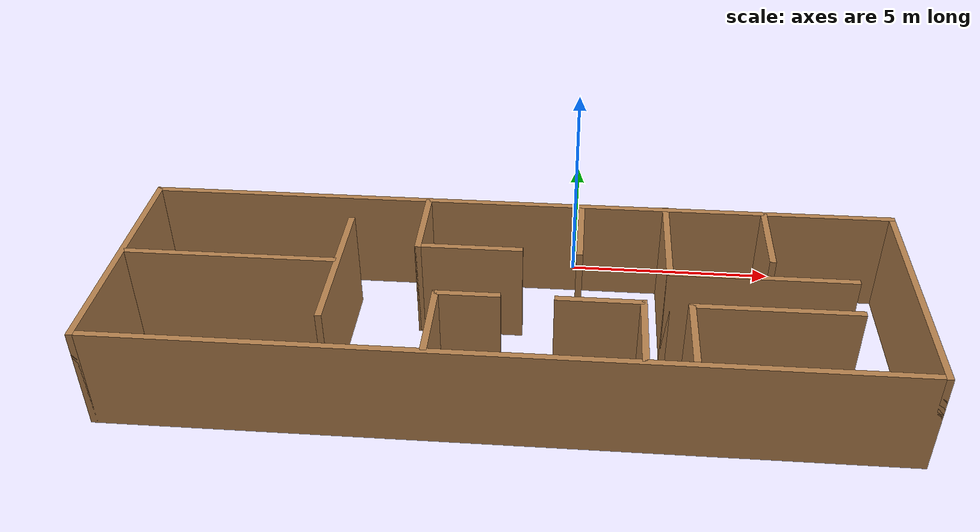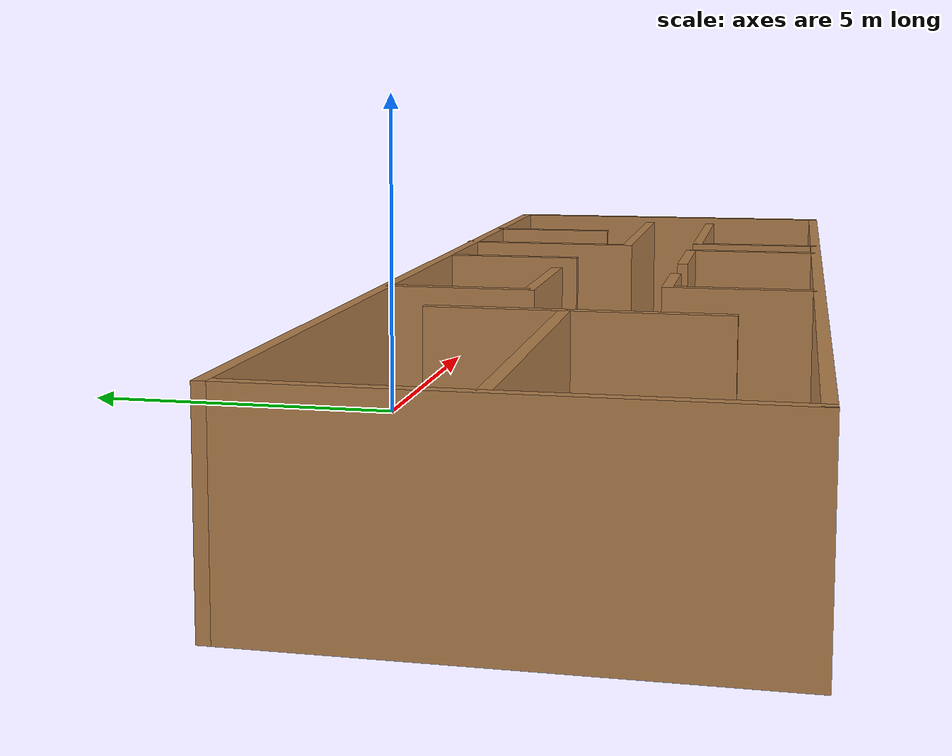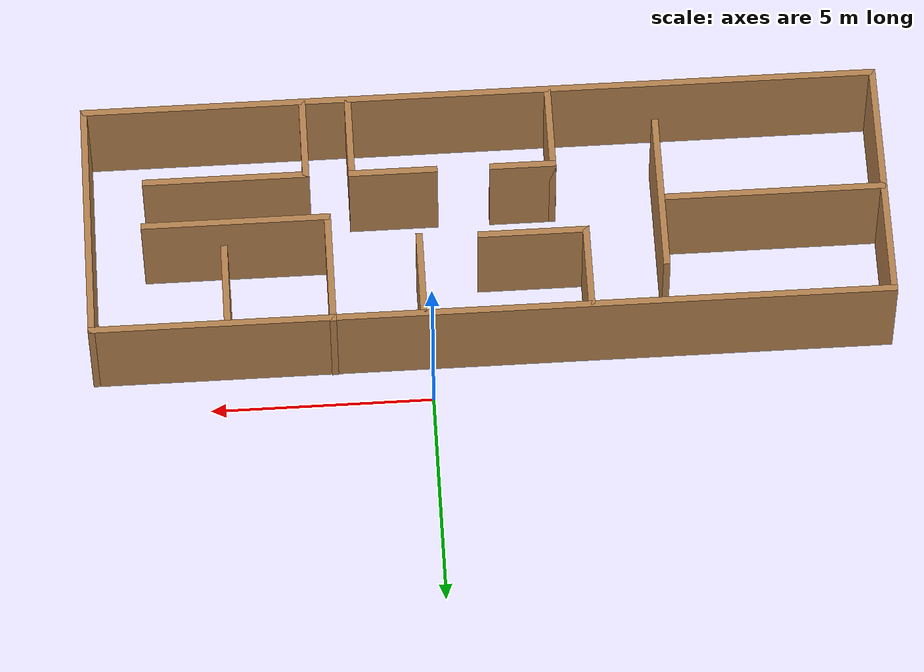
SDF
<?xml version='1.0'?>
<sdf version='1.7'>
  <model name='v1'>
    <pose>-1.395 -3.2725 0 0 -0 0</pose>
    <link name='Wall_0'>
      <collision name='Wall_0_Collision'>
        <geometry>
          <box>
            <size>5.75 0.15 2.5</size>
          </box>
        </geometry>
        <pose>0 0 1.25 0 -0 0</pose>
      </collision>
      <visual name='Wall_0_Visual'>
        <pose>0 0 1.25 0 -0 0</pose>
        <geometry>
          <box>
            <size>5.75 0.15 2.5</size>
          </box>
        </geometry>
        <material>
          <script>
            <uri>file://media/materials/scripts/gazebo.material</uri>
            <name>Gazebo/Wood</name>
          </script>
          <ambient>1 1 1 1</ambient>
        </material>
        <meta>
          <layer>0</layer>
        </meta>
      </visual>
      <pose>-8.925 -0.3975 0 0 -0 -1.5708</pose>
    </link>
    <link name='Wall_1'>
      <collision name='Wall_1_Collision'>
        <geometry>
          <box>
            <size>18 0.15 2.5</size>
          </box>
        </geometry>
        <pose>0 0 1.25 0 -0 0</pose>
      </collision>
      <visual name='Wall_1_Visual'>
        <pose>0 0 1.25 0 -0 0</pose>
        <geometry>
          <box>
            <size>18 0.15 2.5</size>
          </box>
        </geometry>
        <material>
          <script>
            <uri>file://media/materials/scripts/gazebo.material</uri>
            <name>Gazebo/Wood</name>
          </script>
          <ambient>1 1 1 1</ambient>
        </material>
        <meta>
          <layer>0</layer>
        </meta>
      </visual>
      <pose>0 -3.1975 0 0 -0 0</pose>
    </link>
    <link name='Wall_10'>
      <collision name='Wall_10_Collision'>
        <geometry>
          <box>
            <size>4.25 0.15 2.5</size>
          </box>
        </geometry>
        <pose>0 0 1.25 0 -0 0</pose>
      </collision>
      <visual name='Wall_10_Visual'>
        <pose>0 0 1.25 0 -0 0</pose>
        <geometry>
          <box>
            <size>4.25 0.15 2.5</size>
          </box>
        </geometry>
        <material>
          <script>
            <uri>file://media/materials/scripts/gazebo.material</uri>
            <name>Gazebo/Wood</name>
          </script>
          <ambient>1 1 1 1</ambient>
        </material>
        <meta>
          <layer>0</layer>
        </meta>
      </visual>
      <pose>5.615 -0.1775 0 0 -0 0</pose>
    </link>
    <link name='Wall_12'>
      <collision name='Wall_12_Collision'>
        <geometry>
          <box>
            <size>2 0.15 2.5</size>
          </box>
        </geometry>
        <pose>0 0 1.25 0 -0 0</pose>
      </collision>
      <visual name='Wall_12_Visual'>
        <pose>0 0 1.25 0 -0 0</pose>
        <geometry>
          <box>
            <size>2 0.15 2.5</size>
          </box>
        </geometry>
        <material>
          <script>
            <uri>file://media/materials/scripts/gazebo.material</uri>
            <name>Gazebo/Wood</name>
          </script>
          <ambient>1 1 1 1</ambient>
        </material>
        <meta>
          <layer>0</layer>
        </meta>
      </visual>
      <pose>5.905 1.4275 0 0 -0 -1.5708</pose>
    </link>
    <link name='Wall_14'>
      <collision name='Wall_14_Collision'>
        <geometry>
          <box>
            <size>2 0.15 2.5</size>
          </box>
        </geometry>
        <pose>0 0 1.25 0 -0 0</pose>
      </collision>
      <visual name='Wall_14_Visual'>
        <pose>0 0 1.25 0 -0 0</pose>
        <geometry>
          <box>
            <size>2 0.15 2.5</size>
          </box>
        </geometry>
        <material>
          <script>
            <uri>file://media/materials/scripts/gazebo.material</uri>
            <name>Gazebo/Wood</name>
          </script>
          <ambient>1 1 1 1</ambient>
        </material>
        <meta>
          <layer>0</layer>
        </meta>
      </visual>
      <pose>3.995 -2.2225 0 0 -0 1.5708</pose>
    </link>
    <link name='Wall_15'>
      <collision name='Wall_15_Collision'>
        <geometry>
          <box>
            <size>3.75 0.15 2.5</size>
          </box>
        </geometry>
        <pose>0 0 1.25 0 -0 0</pose>
      </collision>
      <visual name='Wall_15_Visual'>
        <pose>0 0 1.25 0 -0 0</pose>
        <geometry>
          <box>
            <size>3.75 0.15 2.5</size>
          </box>
        </geometry>
        <material>
          <script>
            <uri>file://media/materials/scripts/gazebo.material</uri>
            <name>Gazebo/Wood</name>
          </script>
          <ambient>1 1 1 1</ambient>
        </material>
        <meta>
          <layer>0</layer>
        </meta>
      </visual>
      <pose>5.795 -1.2975 0 0 -0 0</pose>
    </link>
    <link name='Wall_17'>
      <collision name='Wall_17_Collision'>
        <geometry>
          <box>
            <size>2 0.15 2.5</size>
          </box>
        </geometry>
        <pose>0 0 1.25 0 -0 0</pose>
      </collision>
      <visual name='Wall_17_Visual'>
        <pose>0 0 1.25 0 -0 0</pose>
        <geometry>
          <box>
            <size>2 0.15 2.5</size>
          </box>
        </geometry>
        <material>
          <script>
            <uri>file://media/materials/scripts/gazebo.material</uri>
            <name>Gazebo/Wood</name>
          </script>
          <ambient>1 1 1 1</ambient>
        </material>
        <meta>
          <layer>0</layer>
        </meta>
      </visual>
      <pose>-1.555 -2.1725 0 0 -0 1.5708</pose>
    </link>
    <link name='Wall_18'>
      <collision name='Wall_18_Collision'>
        <geometry>
          <box>
            <size>1.5 0.15 2.5</size>
          </box>
        </geometry>
        <pose>0 0 1.25 0 -0 0</pose>
      </collision>
      <visual name='Wall_18_Visual'>
        <pose>0 0 1.25 0 -0 0</pose>
        <geometry>
          <box>
            <size>1.5 0.15 2.5</size>
          </box>
        </geometry>
        <material>
          <script>
            <uri>file://media/materials/scripts/gazebo.material</uri>
            <name>Gazebo/Wood</name>
          </script>
          <ambient>1 1 1 1</ambient>
        </material>
        <meta>
          <layer>0</layer>
        </meta>
      </visual>
      <pose>-0.88 -1.2475 0 0 -0 0</pose>
    </link>
    <link name='Wall_2'>
      <collision name='Wall_2_Collision'>
        <geometry>
          <box>
            <size>5.75 0.15 2.5</size>
          </box>
        </geometry>
        <pose>0 0 1.25 0 -0 0</pose>
      </collision>
      <visual name='Wall_2_Visual'>
        <pose>0 0 1.25 0 -0 0</pose>
        <geometry>
          <box>
            <size>5.75 0.15 2.5</size>
          </box>
        </geometry>
        <material>
          <script>
            <uri>file://media/materials/scripts/gazebo.material</uri>
            <name>Gazebo/Wood</name>
          </script>
          <ambient>1 1 1 1</ambient>
        </material>
        <meta>
          <layer>0</layer>
        </meta>
      </visual>
      <pose>8.925 -0.3975 0 0 -0 1.5708</pose>
    </link>
    <link name='Wall_20'>
      <collision name='Wall_20_Collision'>
        <geometry>
          <box>
            <size>2 0.15 2.5</size>
          </box>
        </geometry>
        <pose>0 0 1.25 0 -0 0</pose>
      </collision>
      <visual name='Wall_20_Visual'>
        <pose>0 0 1.25 0 -0 0</pose>
        <geometry>
          <box>
            <size>2 0.15 2.5</size>
          </box>
        </geometry>
        <material>
          <script>
            <uri>file://media/materials/scripts/gazebo.material</uri>
            <name>Gazebo/Wood</name>
          </script>
          <ambient>1 1 1 1</ambient>
        </material>
        <meta>
          <layer>0</layer>
        </meta>
      </visual>
      <pose>2.04 -1.2575 0 0 -0 0</pose>
    </link>
    <link name='Wall_21'>
      <collision name='Wall_21_Collision'>
        <geometry>
          <box>
            <size>2 0.15 2.5</size>
          </box>
        </geometry>
        <pose>0 0 1.25 0 -0 0</pose>
      </collision>
      <visual name='Wall_21_Visual'>
        <pose>0 0 1.25 0 -0 0</pose>
        <geometry>
          <box>
            <size>2 0.15 2.5</size>
          </box>
        </geometry>
        <material>
          <script>
            <uri>file://media/materials/scripts/gazebo.material</uri>
            <name>Gazebo/Wood</name>
          </script>
          <ambient>1 1 1 1</ambient>
        </material>
        <meta>
          <layer>0</layer>
        </meta>
      </visual>
      <pose>2.965 -2.1825 0 0 -0 -1.5708</pose>
    </link>
    <link name='Wall_23'>
      <collision name='Wall_23_Collision'>
        <geometry>
          <box>
            <size>2 0.15 2.5</size>
          </box>
        </geometry>
        <pose>0 0 1.25 0 -0 0</pose>
      </collision>
      <visual name='Wall_23_Visual'>
        <pose>0 0 1.25 0 -0 0</pose>
        <geometry>
          <box>
            <size>2 0.15 2.5</size>
          </box>
        </geometry>
        <material>
          <script>
            <uri>file://media/materials/scripts/gazebo.material</uri>
            <name>Gazebo/Wood</name>
          </script>
          <ambient>1 1 1 1</ambient>
        </material>
        <meta>
          <layer>0</layer>
        </meta>
      </visual>
      <pose>1.545 1.3775 0 0 -0 -1.5708</pose>
    </link>
    <link name='Wall_25'>
      <collision name='Wall_25_Collision'>
        <geometry>
          <box>
            <size>2 0.15 2.5</size>
          </box>
        </geometry>
        <pose>0 0 1.25 0 -0 0</pose>
      </collision>
      <visual name='Wall_25_Visual'>
        <pose>0 0 1.25 0 -0 0</pose>
        <geometry>
          <box>
            <size>2 0.15 2.5</size>
          </box>
        </geometry>
        <material>
          <script>
            <uri>file://media/materials/scripts/gazebo.material</uri>
            <name>Gazebo/Wood</name>
          </script>
          <ambient>1 1 1 1</ambient>
        </material>
        <meta>
          <layer>0</layer>
        </meta>
      </visual>
      <pose>-2.185 1.4175 0 0 -0 -1.5708</pose>
    </link>
    <link name='Wall_26'>
      <collision name='Wall_26_Collision'>
        <geometry>
          <box>
            <size>2.5 0.15 2.5</size>
          </box>
        </geometry>
        <pose>0 0 1.25 0 -0 0</pose>
      </collision>
      <visual name='Wall_26_Visual'>
        <pose>0 0 1.25 0 -0 0</pose>
        <geometry>
          <box>
            <size>2.5 0.15 2.5</size>
          </box>
        </geometry>
        <material>
          <script>
            <uri>file://media/materials/scripts/gazebo.material</uri>
            <name>Gazebo/Wood</name>
          </script>
          <ambient>1 1 1 1</ambient>
        </material>
        <meta>
          <layer>0</layer>
        </meta>
      </visual>
      <pose>-1.01 0.4925 0 0 -0 0</pose>
    </link>
    <link name='Wall_3'>
      <collision name='Wall_3_Collision'>
        <geometry>
          <box>
            <size>18 0.15 2.5</size>
          </box>
        </geometry>
        <pose>0 0 1.25 0 -0 0</pose>
      </collision>
      <visual name='Wall_3_Visual'>
        <pose>0 0 1.25 0 -0 0</pose>
        <geometry>
          <box>
            <size>18 0.15 2.5</size>
          </box>
        </geometry>
        <material>
          <script>
            <uri>file://media/materials/scripts/gazebo.material</uri>
            <name>Gazebo/Wood</name>
          </script>
          <ambient>1 1 1 1</ambient>
        </material>
        <meta>
          <layer>0</layer>
        </meta>
      </visual>
      <pose>0 2.4025 0 0 -0 3.14159</pose>
    </link>
    <link name='Wall_5'>
      <collision name='Wall_5_Collision'>
        <geometry>
          <box>
            <size>5 0.15 2.5</size>
          </box>
        </geometry>
        <pose>0 0 1.25 0 -0 0</pose>
      </collision>
      <visual name='Wall_5_Visual'>
        <pose>0 0 1.25 0 -0 0</pose>
        <geometry>
          <box>
            <size>5 0.15 2.5</size>
          </box>
        </geometry>
        <material>
          <script>
            <uri>file://media/materials/scripts/gazebo.material</uri>
            <name>Gazebo/Wood</name>
          </script>
          <ambient>1 1 1 1</ambient>
        </material>
        <meta>
          <layer>0</layer>
        </meta>
      </visual>
      <pose>-6.46 -0.2275 0 0 -0 0</pose>
    </link>
    <link name='Wall_7'>
      <collision name='Wall_7_Collision'>
        <geometry>
          <box>
            <size>3.75 0.15 2.5</size>
          </box>
        </geometry>
        <pose>0 0 1.25 0 -0 0</pose>
      </collision>
      <visual name='Wall_7_Visual'>
        <pose>0 0 1.25 0 -0 0</pose>
        <geometry>
          <box>
            <size>3.75 0.15 2.5</size>
          </box>
        </geometry>
        <material>
          <script>
            <uri>file://media/materials/scripts/gazebo.material</uri>
            <name>Gazebo/Wood</name>
          </script>
          <ambient>1 1 1 1</ambient>
        </material>
        <meta>
          <layer>0</layer>
        </meta>
      </visual>
      <pose>-3.925 -0.3775 0 0 -0 -1.5708</pose>
    </link>
    <link name='Wall_9'>
      <collision name='Wall_9_Collision'>
        <geometry>
          <box>
            <size>2.75 0.15 2.5</size>
          </box>
        </geometry>
        <pose>0 0 1.25 0 -0 0</pose>
      </collision>
      <visual name='Wall_9_Visual'>
        <pose>0 0 1.25 0 -0 0</pose>
        <geometry>
          <box>
            <size>2.75 0.15 2.5</size>
          </box>
        </geometry>
        <material>
          <script>
            <uri>file://media/materials/scripts/gazebo.material</uri>
            <name>Gazebo/Wood</name>
          </script>
          <ambient>1 1 1 1</ambient>
        </material>
        <meta>
          <layer>0</layer>
        </meta>
      </visual>
      <pose>3.565 1.1225 0 0 -0 -1.5708</pose>
    </link>
    <static>1</static>
  </model>
</sdf>
